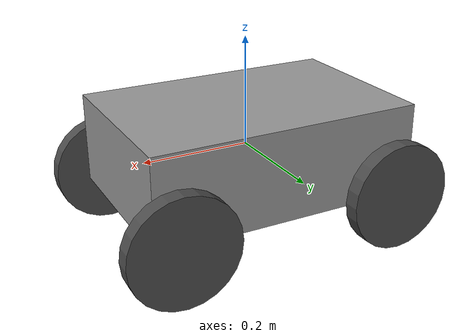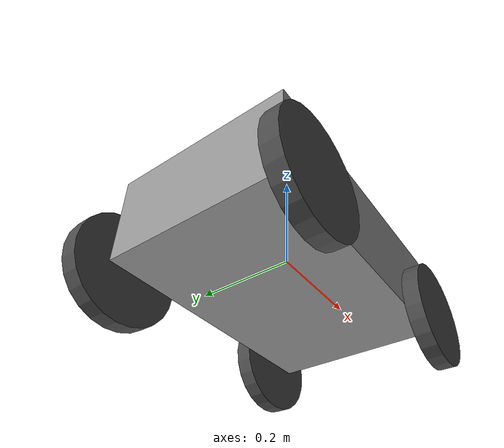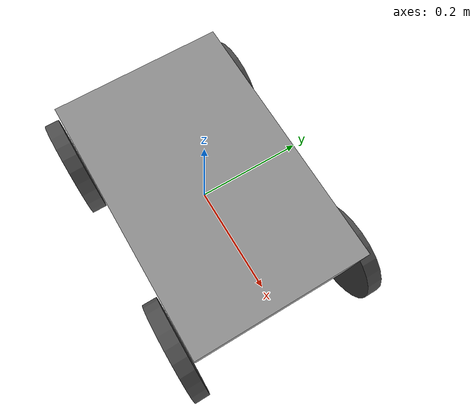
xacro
<?xml version="1.0"?>

<robot name="differential_drive_robot" xmlns:xacro="http://www.ros.org/wiki/xacro">

<!-- Body Dimensions -->
<xacro:property name="body_link_x_dim" value="0.5"/>
<xacro:property name="body_link_y_dim" value="0.33"/>
<xacro:property name="body_link_z_dim" value="0.168"/>

<!-- Wheel Dimensions -->
<xacro:property name="wheel_link_radius" value="0.1"/>
<xacro:property name="wheel_link_length" value="0.03"/>
<xacro:property name="wheel_link_z_location" value="-0.075"/>
<xacro:property name="wheel_link_y_location" value="0.005"/>

<!-- Pi Constant -->
<xacro:property name="pi_const" value="3.14159265"/>

<!-- Robot Body and Wheel Mass -->
<xacro:property name="body_mass" value="2.5"/>
<xacro:property name="wheel_mass" value="0.31"/>

<!-- Moments of Inertia of the Wheel -->
<xacro:property name="Iz_wheel" value="${0.5*wheel_mass*wheel_link_radius*wheel_link_radius}"/>
<xacro:property name="I_wheel"  value="${(1.0/12.0)*wheel_mass*(3*wheel_link_radius*wheel_link_radius+wheel_link_length*wheel_link_length)}"/>

<xacro:macro name="inertia_wheel">
    <inertial>
        <origin xyz="0.0 0.0 0.0" rpy="0.0 0.0 0.0"/>
        <mass value="${wheel_mass}"/>
        <inertia ixx="${I_wheel}" ixy="0.0" ixz="0.0" iyy="${I_wheel}" iyz="0.0" izz="${Iz_wheel}" />
    </inertial>
</xacro:macro>

<!-- Extra Gazebo Options -->
<xacro:include filename="$(find lawn_robot)/model/robot.gazebo" />

<!--         Links and Joints Definition        -->

<!-- Dummy link, otherwise Gazebo will complain -->
<link name="dummy">
</link>

<joint name="dummy_joint" type="fixed">
    <parent link="dummy"/>
    <child link="body_link"/>
</joint>

<!--           Body Link of the robot           -->

<link name="body_link">
    <visual>
        <geometry>
            <box size="${body_link_x_dim} ${body_link_y_dim} ${body_link_z_dim}" />
        </geometry>
        <origin xyz="0.0 0.0 0.0" rpy="0.0 0.0 0.0"/>
    </visual>

    <collision>
        <geometry>
            <box size="${body_link_x_dim} ${body_link_y_dim} ${body_link_z_dim}" />
        </geometry>
        <origin xyz="0.0 0.0 0.0" rpy="0.0 0.0 0.0"/>
    </collision>

    <inertial>
        <origin xyz="0.0 0.0 0.0" rpy="0.0 0.0 0.0"/>
        <mass value="${body_mass}" />
    <inertia
    ixx="${(1.0/12.0)*body_mass*(body_link_y_dim*body_link_y_dim+body_link_z_dim*body_link_z_dim)}"
    ixy="0" ixz="0"
    iyy="${(1.0/12.0)*body_mass*(body_link_x_dim*body_link_x_dim+body_link_z_dim*body_link_z_dim)}"
    iyz="0"
    izz="${(1.0/12.0)*body_mass*(body_link_y_dim*body_link_y_dim+body_link_x_dim*body_link_x_dim)}" />
    </inertial>
</link>

<!--        Back Right Wheel of the robot       -->

<joint name="wheel1_joint" type="continuous">
    <parent link="body_link"/>
    <child link="wheel1_link"/>
    <origin xyz="${-body_link_x_dim/2+0.4*wheel_link_radius} ${-body_link_y_dim/2-((wheel_link_length/2)+wheel_link_y_location)} ${wheel_link_z_location}" rpy="0.0 0.0 0.0"/>
    <axis xyz="0 1 0"/>
    <limit effort="1000" velocity="1000"/>
    <dynamics damping="1.0" friction="1.0" />
</joint>

<link name="wheel1_link">
    <visual>
        <origin xyz="0.0 0.0 0.0" rpy="${pi_const/2} 0 0"/>
        <geometry>
            <cylinder radius="${wheel_link_radius}" length="${wheel_link_length}"/>
        </geometry>
    </visual>

    <collision>
        <origin xyz="0.0 0.0 0.0" rpy="${pi_const/2} 0 0"/>
        <geometry>
            <cylinder radius="${wheel_link_radius}" length="${wheel_link_length}"/>
        </geometry>
    </collision>

    <xacro:inertia_wheel />
</link>

<!--        Back Left Wheel of the robot       -->

<joint name="wheel2_joint" type="continuous">
    <parent link="body_link"/>
    <child link="wheel2_link"/>
    <origin xyz="${-body_link_x_dim/2+0.4*wheel_link_radius} ${body_link_y_dim/2+((wheel_link_length/2)+wheel_link_y_location)} ${wheel_link_z_location}" rpy="0.0 0.0 0.0"/>
    <axis xyz="0 1 0"/>
    <limit effort="1000" velocity="1000"/>
    <dynamics damping="1.0" friction="1.0" />
</joint>

<link name="wheel2_link">
    <visual>
        <origin xyz="0.0 0.0 0.0" rpy="${pi_const/2} 0 0"/>
        <geometry>
            <cylinder radius="${wheel_link_radius}" length="${wheel_link_length}"/>
        </geometry>
    </visual>

    <collision>
        <origin xyz="0.0 0.0 0.0" rpy="${pi_const/2} 0 0"/>
        <geometry>
            <cylinder radius="${wheel_link_radius}" length="${wheel_link_length}"/>
        </geometry>
    </collision>

    <xacro:inertia_wheel />
</link>

<!--        Front Right Wheel of the robot       -->

<joint name="wheel3_joint" type="continuous">
    <parent link="body_link"/>
    <child link="wheel3_link"/>
    <origin xyz="${body_link_x_dim/2-0.4*wheel_link_radius} ${-body_link_y_dim/2-((wheel_link_length/2)+wheel_link_y_location)} ${wheel_link_z_location}" rpy="0.0 0.0 0.0"/>
    <axis xyz="0 1 0"/>
    <limit effort="1000" velocity="1000"/>
    <dynamics damping="1.0" friction="1.0" />
</joint>

<link name="wheel3_link">
    <visual>
        <origin xyz="0.0 0.0 0.0" rpy="${pi_const/2} 0 0"/>
        <geometry>
            <cylinder radius="${wheel_link_radius}" length="${wheel_link_length}"/>
        </geometry>
    </visual>

    <collision>
        <origin xyz="0.0 0.0 0.0" rpy="${pi_const/2} 0 0"/>
        <geometry>
            <cylinder radius="${wheel_link_radius}" length="${wheel_link_length}"/>
        </geometry>
    </collision>

    <xacro:inertia_wheel />
</link>

<!--        Front Right Wheel of the robot       -->

<joint name="wheel4_joint" type="continuous">
    <parent link="body_link"/>
    <child link="wheel4_link"/>
    <origin xyz="${body_link_x_dim/2-0.4*wheel_link_radius} ${body_link_y_dim/2+((wheel_link_length/2)+wheel_link_y_location)} ${wheel_link_z_location}" rpy="0.0 0.0 0.0"/>
    <axis xyz="0 1 0"/>
    <limit effort="1000" velocity="1000"/>
    <dynamics damping="1.0" friction="1.0" />
</joint>

<link name="wheel4_link">
    <visual>
        <origin xyz="0.0 0.0 0.0" rpy="${pi_const/2} 0 0"/>
        <geometry>
            <cylinder radius="${wheel_link_radius}" length="${wheel_link_length}"/>
        </geometry>
    </visual>

    <collision>
        <origin xyz="0.0 0.0 0.0" rpy="${pi_const/2} 0 0"/>
        <geometry>
            <cylinder radius="${wheel_link_radius}" length="${wheel_link_length}"/>
        </geometry>
    </collision>

    <xacro:inertia_wheel />
</link>
</robot>
